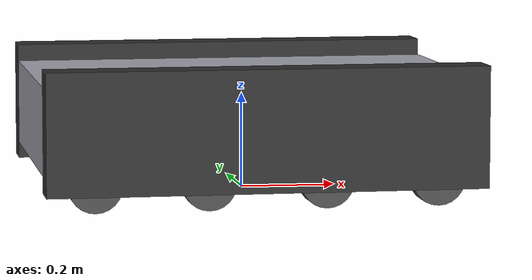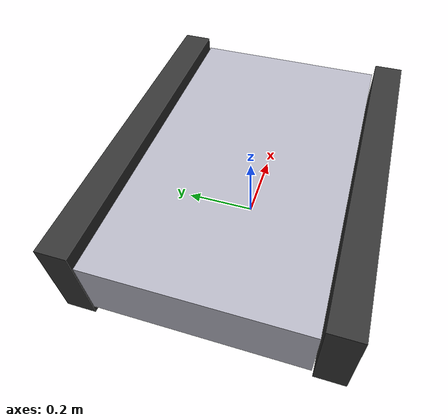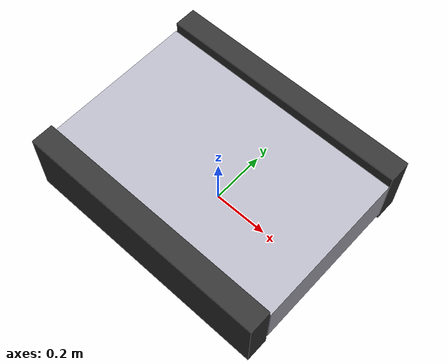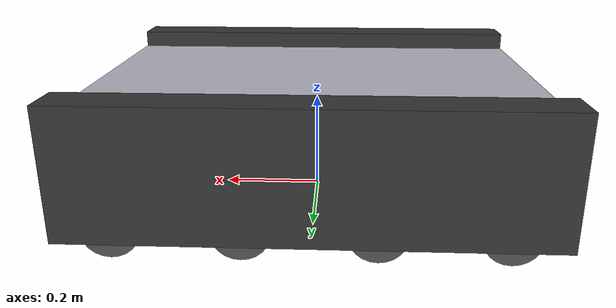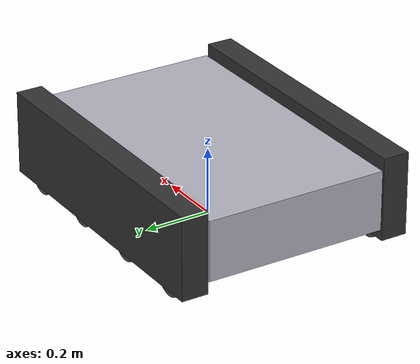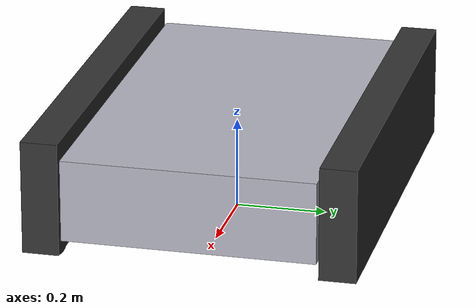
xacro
<?xml version="1.0"?>
<robot xmlns:xacro="http://www.ros.org/wiki/xacro" name="tracked_rover_8wd">

  <xacro:property name="body_l" value="0.90"/>
  <xacro:property name="body_w" value="0.55"/>
  <xacro:property name="body_h" value="0.18"/>
  <xacro:property name="wheel_radius" value="0.055"/>
  <xacro:property name="wheel_width"  value="0.04"/>
  <xacro:property name="side_y" value="0.32"/>
  <xacro:property name="body_z"  value="0.16"/>
  <xacro:property name="wheel_z" value="${wheel_radius}"/>
  <xacro:property name="plate_z" value="0.12"/>

  <link name="base_footprint"/>

  <joint name="base_footprint_joint" type="fixed">
    <parent link="base_footprint"/>
    <child link="base_link"/>
    <origin xyz="0 0 0" rpy="0 0 0"/>
  </joint>

  <link name="base_link">
    <visual>
      <origin xyz="0 0 ${body_z}" rpy="0 0 0"/>
      <geometry> <box size="${body_l} ${body_w} ${body_h}"/> </geometry>
      <material name="metal"> <color rgba="0.7 0.7 0.75 1"/> </material>
    </visual>
    <collision>
      <origin xyz="0 0 ${body_z}" rpy="0 0 0"/>
      <geometry> <box size="${body_l} ${body_w} ${body_h}"/> </geometry>
    </collision>
    <inertial>
      <origin xyz="0 0 ${body_z}" rpy="0 0 0"/>
      <mass value="30"/>
      <inertia ixx="1.2" iyy="1.8" izz="2.0" ixy="0" ixz="0" iyz="0"/>
    </inertial>
  </link>

  <xacro:macro name="track_body" params="name y_offset">
    <link name="${name}">
      <visual>
        <origin xyz="0 0 ${body_z}" rpy="0 0 0"/>
        <geometry> <box size="0.90 0.08 0.25"/> </geometry>
        <material name="dark"> <color rgba="0.2 0.2 0.2 1"/> </material>
      </visual>
      <collision> <origin xyz="0 0 ${body_z}" rpy="0 0 0"/>
        <geometry> <box size="0.90 0.08 0.25"/> </geometry>
      </collision>
      <inertial>
        <mass value="1.0"/>
        <inertia ixx="0.01" iyy="0.01" izz="0.01" ixy="0" ixz="0" iyz="0"/>
      </inertial>
    </link>
    <joint name="${name}_joint" type="fixed">
      <parent link="base_link"/>
      <child link="${name}"/>
      <origin xyz="0 ${y_offset} 0" rpy="0 0 0"/>
    </joint>
  </xacro:macro>

  <xacro:track_body name="left_track_body" y_offset="${side_y}"/>
  <xacro:track_body name="right_track_body" y_offset="-${side_y}"/>

  <xacro:macro name="road_wheel" params="name x y">
    <link name="${name}">
      <visual>
        <origin xyz="0 0 0" rpy="1.5708 0 0"/>
        <geometry> <cylinder radius="${wheel_radius}" length="${wheel_width}"/> </geometry>
        <material name="wheel"> <color rgba="0.3 0.3 0.3 1"/> </material>
      </visual>
      <collision>
        <origin xyz="0 0 0" rpy="1.5708 0 0"/>
        <geometry> <cylinder radius="${wheel_radius}" length="${wheel_width}"/> </geometry>
      </collision>
      <inertial>
        <mass value="0.8"/>
        <inertia ixx="0.001" iyy="0.001" izz="0.001" ixy="0" ixz="0" iyz="0"/>
      </inertial>
    </link>

    <joint name="${name}_joint" type="continuous">
      <parent link="base_link"/>
      <child link="${name}"/>
      <origin xyz="${x} ${y} ${wheel_z}" rpy="0 0 0"/>
      <axis xyz="0 1 0"/>
    </joint>

    <gazebo reference="${name}">
      <mu1>2.0</mu1>
      <mu2>2.0</mu2>
      <material>Gazebo/DarkGrey</material>
    </gazebo>
  </xacro:macro>

  <xacro:road_wheel name="lw1" x="0.35"  y="${side_y}"/>
  <xacro:road_wheel name="lw2" x="0.12"  y="${side_y}"/>
  <xacro:road_wheel name="lw3" x="-0.12" y="${side_y}"/>
  <xacro:road_wheel name="lw4" x="-0.35" y="${side_y}"/>

  <xacro:road_wheel name="rw1" x="0.35"  y="-${side_y}"/>
  <xacro:road_wheel name="rw2" x="0.12"  y="-${side_y}"/>
  <xacro:road_wheel name="rw3" x="-0.12" y="-${side_y}"/>
  <xacro:road_wheel name="rw4" x="-0.35" y="-${side_y}"/>

  <gazebo>
    <plugin name="diff_drive" filename="libgazebo_ros_diff_drive.so">
      <ros>
        <namespace>/</namespace>
      </ros>
      <update_rate>30</update_rate>
      <num_wheel_pairs>4</num_wheel_pairs>

      <left_joint>lw1_joint</left_joint>
      <left_joint>lw2_joint</left_joint>
      <left_joint>lw3_joint</left_joint>
      <left_joint>lw4_joint</left_joint>

      <right_joint>rw1_joint</right_joint>
      <right_joint>rw2_joint</right_joint>
      <right_joint>rw3_joint</right_joint>
      <right_joint>rw4_joint</right_joint>

      <wheel_separation>${side_y * 2}</wheel_separation>
      <wheel_diameter>${wheel_radius * 2}</wheel_diameter>

      <max_wheel_torque>20</max_wheel_torque>
      <max_wheel_acceleration>1.0</max_wheel_acceleration>

      <publish_odom>true</publish_odom>
      <publish_odom_tf>true</publish_odom_tf>
      <publish_wheel_tf>true</publish_wheel_tf>

      <odometry_frame>odom</odometry_frame>
      <robot_base_frame>base_footprint</robot_base_frame>
    </plugin>
  </gazebo>

</robot>
